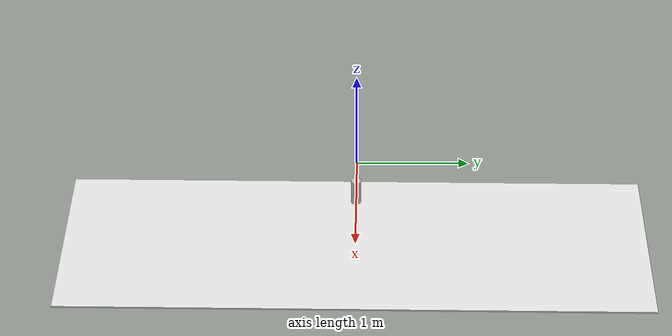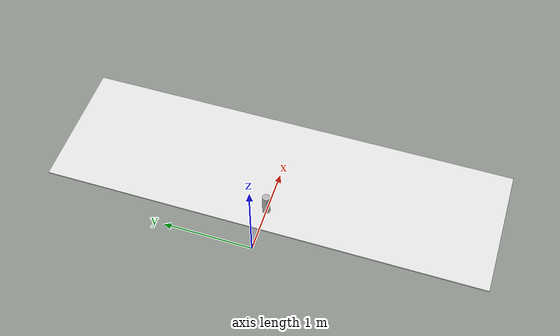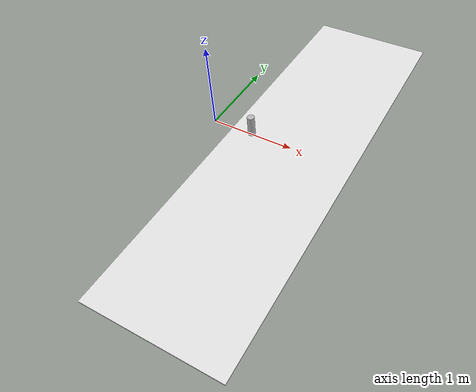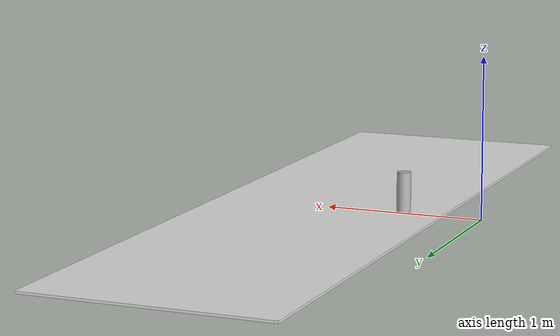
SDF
<?xml version="1.0"?>
<sdf version="1.7">
  <model name="bouncing_ball">
    <link name="ball1">
      <pose>0.5 0 0.05 0 0 0</pose>
      <inertial>
        <mass>0.2460254254597445</mass>
        <inertia>
          <ixx>0.001</ixx>
          <iyy>0.001</iyy>
          <izz>0.001</izz>
          <ixy>0</ixy>
          <ixz>0</ixz>
          <iyz>0</iyz>
        </inertia>
      </inertial>
      <visual name="visual">
        <geometry>
          <mesh>
            <uri>file:///workspaces/manip-final-project/tennisball.obj</uri>
            <scale>1.0 1.0 1.0</scale>
          </mesh>
        </geometry>
        <material>
          <diffuse>1.0 0.34 0.25 1.0</diffuse>
        </material>
      </visual>
      <collision name="collision">
       <geometry>
          <mesh>
            <uri>file:///workspaces/manip-final-project/tennisball.obj</uri>
            <scale>1.0 1.0 1.0</scale>
          </mesh>
        </geometry>
        <drake:proximity_properties>
          <drake:point_contact_stiffness>
            20000
          </drake:point_contact_stiffness>
          <drake:hunt_crossley_dissipation>
            0
          </drake:hunt_crossley_dissipation>
        </drake:proximity_properties>
      </collision>
    </link>

    <link name="ball2">
      <pose>0.5 0 0.22 0 0 0</pose>
      <inertial>
        <mass>0.2460254254597445</mass>
        <inertia>
          <ixx>0.001</ixx>
          <iyy>0.001</iyy>
          <izz>0.001</izz>
          <ixy>0</ixy>
          <ixz>0</ixz>
          <iyz>0</iyz>
        </inertia>
      </inertial>
      <visual name="visual">
        <geometry>
          <mesh>
            <uri>file:///workspaces/manip-final-project/tennisball.obj</uri>
            <scale>1.0 1.0 1.0</scale>
          </mesh>
        </geometry>
        <material>
          <diffuse>1.0 0.34 0.25 1.0</diffuse>
        </material>
      </visual>
      <collision name="collision">
       <geometry>
          <mesh>
            <uri>file:///workspaces/manip-final-project/tennisball.obj</uri>
            <scale>1.0 1.0 1.0</scale>
          </mesh>
        </geometry>
        <drake:proximity_properties>
          <drake:point_contact_stiffness>
            20000
          </drake:point_contact_stiffness>
          <drake:hunt_crossley_dissipation>
            0
          </drake:hunt_crossley_dissipation>
        </drake:proximity_properties>
      </collision>
    </link>

    <link name="bottle">
      <pose>0.5 0 0.0075 0 0 0</pose>
      <inertial>
        <pose>0.00014999128534296335 0.0015520581974288457 0.10908677302205083 0 0 0</pose>
        <mass>0.10846699504413468</mass>
        <inertia>
          <ixx>0.0013346246191587629</ixx>
          <ixy>1.9282213555951406e-07</ixy>
          <ixz>-3.435531006557806e-09</ixz>
          <iyy>0.0013344123009309539</iyy>
          <iyz>-7.468889059364413e-09</iyz>
          <izz>0.00013180237893362578</izz>
        </inertia>
      </inertial>
      <visual name="visual">
        <geometry>
          <mesh>
            <uri>file:///workspaces/manip-final-project/tennisbottle.obj</uri>
            <scale>1.0 1.0 1.0</scale>
          </mesh>
        </geometry>
      </visual>
      <collision name="collision">
        <geometry>
          <mesh>
            <uri>file:///workspaces/manip-final-project/tennisbottle.obj</uri>
            <scale>1.0 1.0 1.0</scale>
          </mesh>
        </geometry>
        <drake:proximity_properties>
          <drake:point_contact_stiffness>
            20000
          </drake:point_contact_stiffness>
          <drake:hunt_crossley_dissipation>
            0
          </drake:hunt_crossley_dissipation>
        </drake:proximity_properties>
      </collision>
    </link>

    <joint name="ball1_z" type="prismatic">
      <parent>bottle</parent>
      <child>ball1</child>
      <axis>
        <xyz>0 0 1</xyz>
        <limit>
          <lower>0</lower>
          <upper>0.16</upper>
        </limit>
      </axis>
    </joint>

    <joint name="ball2_z" type="prismatic">
      <parent>bottle</parent>
      <child>ball2</child>
      <axis>
        <xyz>0 0 1</xyz>
        <limit>
          <lower>-0.17</lower>
          <upper>-0.01</upper>
        </limit>
      </axis>
    </joint>

    <link name="table">
      <pose>1 0.0 0 0 0 0</pose>
      <inertial>
        <mass>18.70</mass>
        <inertia>
          <ixx>0.79</ixx>
          <ixy>0</ixy>
          <ixz>0</ixz>
          <iyy>0.53</iyy>
          <iyz>0</iyz>
          <izz>1.2</izz>
        </inertia>
      </inertial>
    <visual name="bottom">
        <geometry>
          <box>
            <size>1.5 5.0 0.015</size>
          </box>
        </geometry>
        <material>
          <diffuse>0.9 0.9 0.9 1.0</diffuse>
        </material>
      </visual>
      <collision name="bottom">
        <geometry>
          <box>
            <size>1.5 5.0 0.015</size>
          </box>
        </geometry>
        <drake:proximity_properties>
          <drake:compliant_hydroelastic/>
          <drake:hydroelastic_modulus>1.0e6</drake:hydroelastic_modulus>
        </drake:proximity_properties>
      </collision>
    </link>

    <joint name="ground_weld" type="fixed">
      <parent>world</parent>
      <child>table</child>
      <pose>1 0 0 0 0 0</pose>
    </joint>

  </model>
</sdf>
